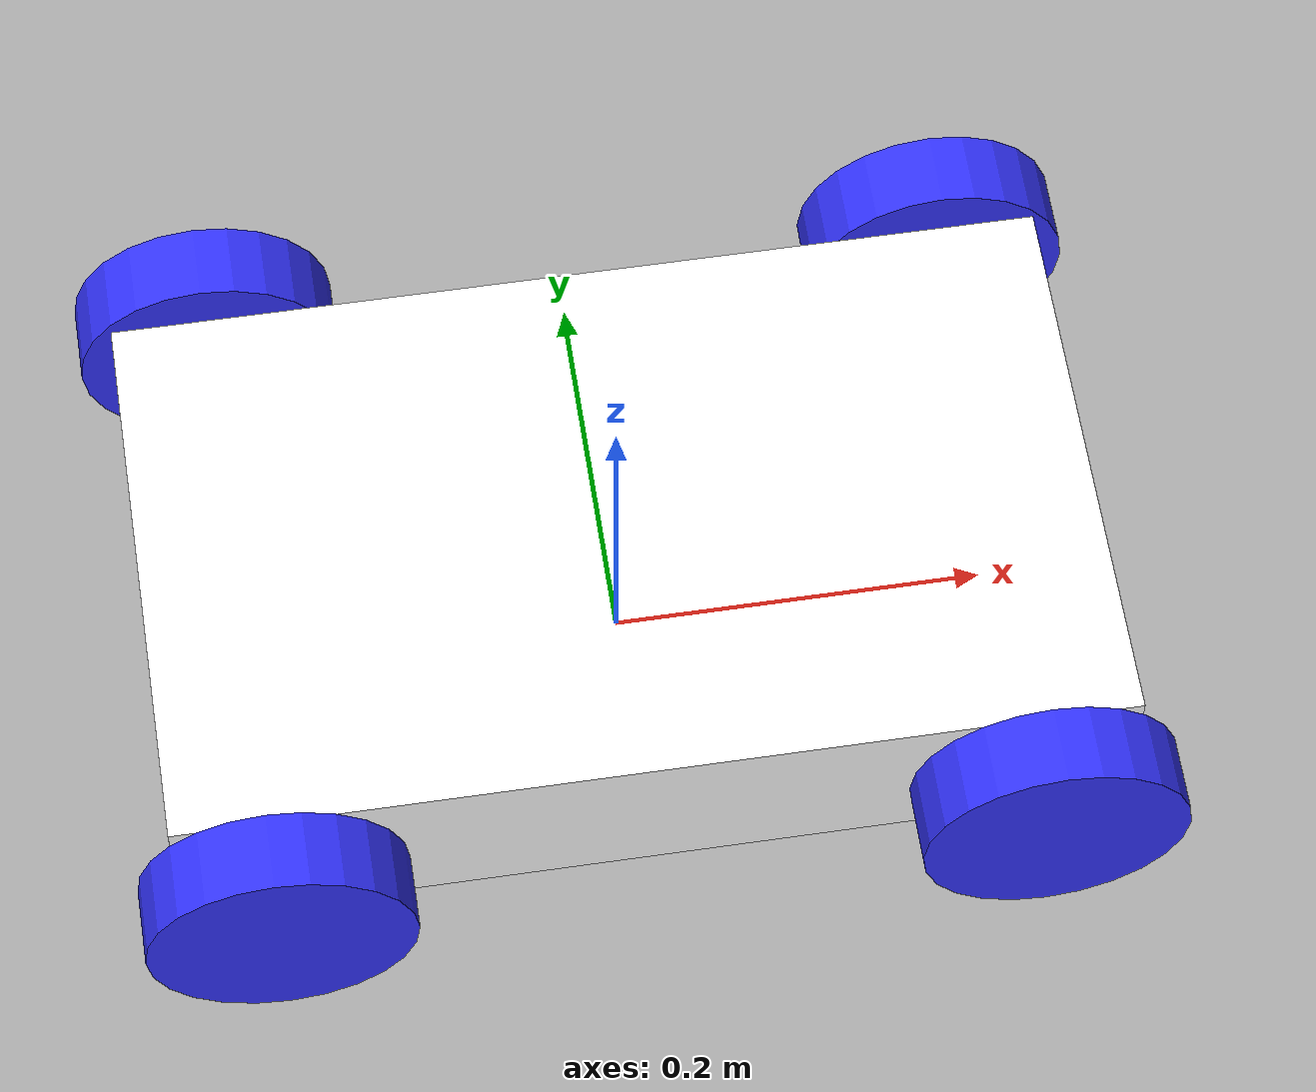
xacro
<?xml version="1.0"?>
<robot xmlns:xacro="http://www.ros.org/wiki/xacro">

    <!-- Constants -->
    <xacro:property name="pi" value="3.1415926535897931"/>

    <material name= "white">
        <color rgba= "1 1 1 1"/>
    </material>

    <material name= "blue">
        <color rgba= "0.2 0.2 1 1"/>
    </material>

    <material name= "orange">
        <color rgba= "1 0.3 0.1 1"/>
    </material>

    <material name= "black">
        <color rgba= "0 0 0 1"/>
    </material>

    <material name= "red">
        <color rgba= "1 0 0 1"/>
    </material>

    <!--base_footprint link-->
    <link name="odom">

    </link>

    <!-- foot print joint-->

    <joint name="odom_base_link_joint" type="fixed">
        <parent link="odom"/>
        <child link="base_link"/>
        <origin xyz="0 0 0.07" rpy="0 0 0"/>
    </joint>

    <!--base link-->
    <link name="base_link">
        <visual>
            <origin xyz="0 0 0"/>
            <geometry>
                <box size="0.5 0.3 0.10"/>
            </geometry>
            <material name="white"/>
        </visual>
        <collision>
            <origin xyz="0 0 0"/>
            <geometry>
                <box size="0.5 0.3 0.10"/>
            </geometry>
        </collision>
        <inertial>
            <mass value="5.0"/>
            <inertia ixx="0.0282916666667" ixy="0" ixz="0" iyy="0.0732916666667" iyz="0" izz="0.0963333333333"/>
        </inertial>
    </link>

    <!--left down wheel joint-->
    <joint name="left_down_wheel_joint" type="continuous">
        <parent link="base_link"/>
        <child link="left_down_wheel_link"/>
        <origin xyz="0.20 0.175 0" rpy="-${pi/2} 0 0"/>
        <axis xyz="0 0 1"/>
    </joint>

    <!--left down wheel link-->
    <link name="left_down_wheel_link">
        <visual>
            <origin xyz="0 0 0"/>
            <geometry>
                <cylinder radius="0.07" length="0.04"/>
            </geometry>
            <material name="blue"/>
        </visual>
    </link>

    <!--right down wheel joint-->
    <joint name="right_down_wheel_joint" type="continuous">
        <parent link="base_link"/>
        <child link="right_down_wheel_link"/>
        <origin xyz="0.20 -0.175 0" rpy="${pi/2} 0 0"/>
        <axis xyz="0 0 -1"/>
    </joint>

    <!--right down wheel link-->
    <link name="right_down_wheel_link">
        <visual>
            <origin xyz="0 0 0"/>
            <geometry>
                <cylinder radius="0.07" length="0.04"/>
            </geometry>
            <material name="blue"/>
        </visual>
    </link>

    <!--left up wheel joint-->
    <joint name="left_up_wheel_joint" type="continuous">
        <parent link="base_link"/>
        <child link="left_up_wheel_link"/>
        <origin xyz="-0.20 0.175 0" rpy="-${pi/2} 0 0"/>
        <axis xyz="0 0 1"/>
    </joint>

    <!--left up wheel link-->
    <link name="left_up_wheel_link">
        <visual>
            <origin xyz="0 0 0"/>
            <geometry>
                <cylinder radius="0.07" length="0.04"/>
            </geometry>
            <material name="blue"/>
        </visual>
    </link>

    <!--right up wheel joint-->
    <joint name="right_up_wheel_joint" type="continuous">
        <parent link="base_link"/>
        <child link="right_up_wheel_link"/>
        <origin xyz="-0.20 -0.175 0" rpy="${pi/2} 0 0"/>
        <axis xyz="0 0 -1"/>
    </joint>

    <!--right up wheel link-->
    <link name="right_up_wheel_link">
        <visual>
            <origin xyz="0 0 0"/>
            <geometry>
                <cylinder radius="0.07" length="0.04"/>
            </geometry>
            <material name="blue"/>
        </visual>
    </link>

</robot>
